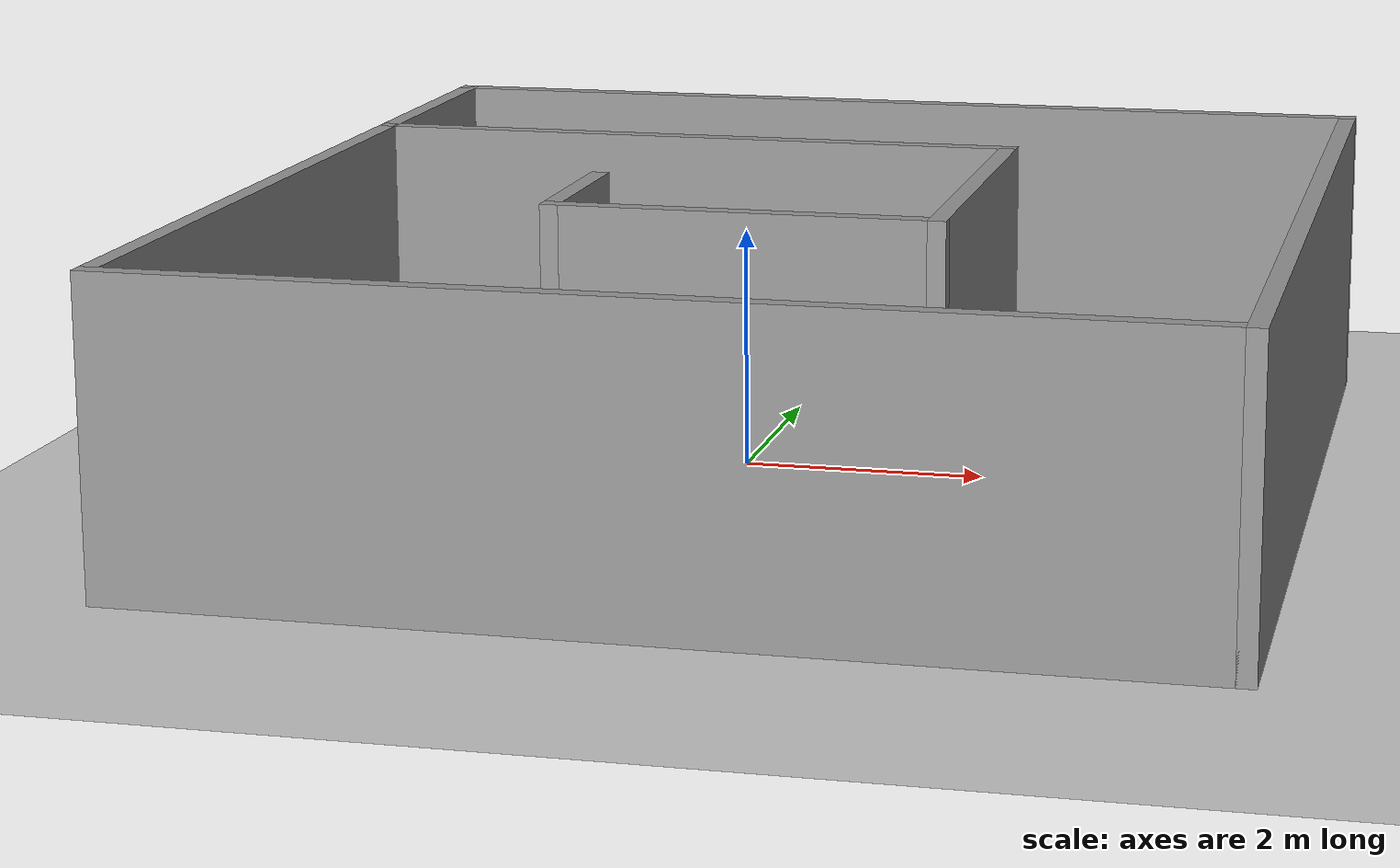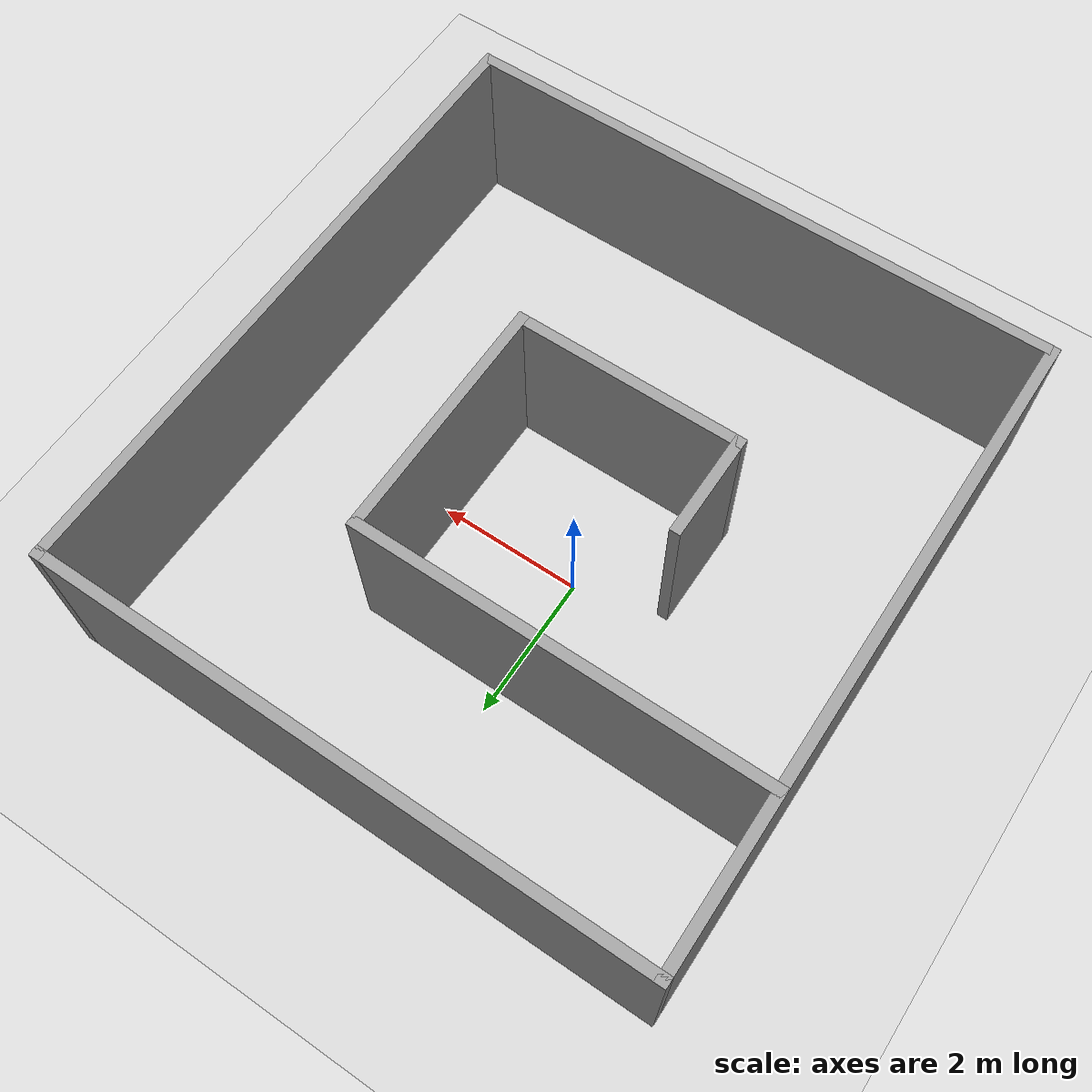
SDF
<sdf version="1.7">
 <world name="default">
  <light name="sun" type="directional">
   <pose>0 0 10 0 -0 0</pose>
   <diffuse>0.8 0.8 0.8 1</diffuse>
   <specular>0.2 0.2 0.2 1</specular>
   <attenuation>
    <range>1000</range>
    <constant>0.9</constant>
    <linear>0.01</linear>
    <quadratic>0.001</quadratic>
   </attenuation>
   <direction>-0.5 0.1 -0.9</direction>
   <spot><inner_angle>0</inner_angle><outer_angle>0</outer_angle><falloff>0</falloff></spot>
  </light>
  <model name="ground_plane">
   <static>1</static>
   <link name="link">
    <collision name="collision">
     <geometry><plane><normal>0 0 1</normal><size>100 100</size></plane></geometry>
     <surface><friction><ode><mu>100</mu><mu2>50</mu2></ode></friction></surface>
    </collision>
    <visual name="visual">
     <cast_shadows>0</cast_shadows>
     <geometry><plane><normal>0 0 1</normal><size>100 100</size></plane></geometry>
     <material>
      <script><uri>file://media/materials/scripts/gazebo.material</uri><name>Gazebo/Grey</name></script>
     </material>
    </visual>
   </link>
  </model>
  <gravity>0 0 -9.8</gravity>
  <magnetic_field>6e-06 2.3e-05 -4.2e-05</magnetic_field>
  <atmosphere type="adiabatic"/>
  <physics type="ode">
   <max_step_size>0.001</max_step_size>
   <real_time_factor>1</real_time_factor>
   <real_time_update_rate>1000</real_time_update_rate>
  </physics>
  <scene><ambient>0.4 0.4 0.4 1</ambient><background>0.7 0.7 0.7 1</background><shadows>1</shadows></scene>
  <spherical_coordinates>
   <surface_model>EARTH_WGS84</surface_model>
   <latitude_deg>0</latitude_deg>
   <longitude_deg>0</longitude_deg>
   <elevation>0</elevation>
   <heading_deg>0</heading_deg>
  </spherical_coordinates>
  <model name="demo2">
   <pose>0.490209 -0.489078 0 0 -0 0</pose>
   <link name="Wall_10">
    <collision name="Wall_10_Collision">
     <geometry><box><size>8.5 0.15 2.5</size></box></geometry>
     <pose>0 0 1.25 0 -0 0</pose>
    </collision>
    <visual name="Wall_10_Visual">
     <pose>0 0 1.25 0 -0 0</pose>
     <geometry><box><size>8.5 0.15 2.5</size></box></geometry>
     <material>
      <script><uri>file://media/materials/scripts/gazebo.material</uri><name>Gazebo/Grey</name></script>
      <ambient>1 1 1 1</ambient>
     </material>
     <meta><layer>0</layer></meta>
    </visual>
    <pose>-0 4.425 0 0 -0 3.14159</pose>
   </link>
   <link name="Wall_11">
    <collision name="Wall_11_Collision">
     <geometry><box><size>9 0.15 2.5</size></box></geometry>
     <pose>0 0 1.25 0 -0 0</pose>
    </collision>
    <visual name="Wall_11_Visual">
     <pose>0 0 1.25 0 -0 0</pose>
     <geometry><box><size>9 0.15 2.5</size></box></geometry>
     <material>
      <script><uri>file://media/materials/scripts/gazebo.material</uri><name>Gazebo/Grey</name></script>
      <ambient>1 1 1 1</ambient>
     </material>
     <meta><layer>0</layer></meta>
    </visual>
    <pose>-4.175 0 0 0 -0 -1.5708</pose>
   </link>
   <link name="Wall_15">
    <collision name="Wall_15_Collision">
     <geometry><box><size>5.75 0.15 2.5</size></box></geometry>
     <pose>0 0 1.25 0 -0 0</pose>
    </collision>
    <visual name="Wall_15_Visual">
     <pose>0 0 1.25 0 -0 0</pose>
     <geometry><box><size>5.75 0.15 2.5</size></box></geometry>
     <material>
      <script><uri>file://media/materials/scripts/gazebo.material</uri><name>Gazebo/Grey</name></script>
      <ambient>1 1 1 1</ambient>
     </material>
     <meta><layer>0</layer></meta>
    </visual>
    <pose>-1.36307 2.1204 0 0 -0 0</pose>
   </link>
   <link name="Wall_16">
    <collision name="Wall_16_Collision">
     <geometry><box><size>3.5 0.15 2.5</size></box></geometry>
     <pose>0 0 1.25 0 -0 0</pose>
    </collision>
    <visual name="Wall_16_Visual">
     <pose>0 0 1.25 0 -0 0</pose>
     <geometry><box><size>3.5 0.15 2.5</size></box></geometry>
     <material>
      <script><uri>file://media/materials/scripts/gazebo.material</uri><name>Gazebo/Grey</name></script>
      <ambient>1 1 1 1</ambient>
     </material>
     <meta><layer>0</layer></meta>
    </visual>
    <pose>1.43693 0.445396 0 0 -0 -1.5708</pose>
   </link>
   <link name="Wall_17">
    <collision name="Wall_17_Collision">
     <geometry><box><size>3.25 0.15 2.5</size></box></geometry>
     <pose>0 0 1.25 0 -0 0</pose>
    </collision>
    <visual name="Wall_17_Visual">
     <pose>0 0 1.25 0 -0 0</pose>
     <geometry><box><size>3.25 0.15 2.5</size></box></geometry>
     <material>
      <script><uri>file://media/materials/scripts/gazebo.material</uri><name>Gazebo/Grey</name></script>
      <ambient>1 1 1 1</ambient>
     </material>
     <meta><layer>0</layer></meta>
    </visual>
    <pose>-0.113072 -1.2296 0 0 -0 3.14159</pose>
   </link>
   <link name="Wall_18">
    <collision name="Wall_18_Collision">
     <geometry><box><size>1.5 0.15 2.5</size></box></geometry>
     <pose>0 0 1.25 0 -0 0</pose>
    </collision>
    <visual name="Wall_18_Visual">
     <pose>0 0 1.25 0 -0 0</pose>
     <geometry><box><size>1.5 0.15 2.5</size></box></geometry>
     <material>
      <script><uri>file://media/materials/scripts/gazebo.material</uri><name>Gazebo/Grey</name></script>
      <ambient>1 1 1 1</ambient>
     </material>
     <meta><layer>0</layer></meta>
    </visual>
    <pose>-1.66307 -0.554604 0 0 -0 1.5708</pose>
   </link>
   <link name="Wall_6">
    <collision name="Wall_6_Collision">
     <geometry><box><size>8.5 0.15 2.5</size></box></geometry>
     <pose>0 0 1.25 0 -0 0</pose>
    </collision>
    <visual name="Wall_6_Visual">
     <pose>0 0 1.25 0 -0 0</pose>
     <geometry><box><size>8.5 0.15 2.5</size></box></geometry>
     <material>
      <script><uri>file://media/materials/scripts/gazebo.material</uri><name>Gazebo/Grey</name></script>
      <ambient>1 1 1 1</ambient>
     </material>
     <meta><layer>0</layer></meta>
    </visual>
    <pose>-0 -4.425 0 0 -0 0</pose>
   </link>
   <link name="Wall_9">
    <collision name="Wall_9_Collision">
     <geometry><box><size>9 0.15 2.5</size></box></geometry>
     <pose>0 0 1.25 0 -0 0</pose>
    </collision>
    <visual name="Wall_9_Visual">
     <pose>0 0 1.25 0 -0 0</pose>
     <geometry><box><size>9 0.15 2.5</size></box></geometry>
     <material>
      <script><uri>file://media/materials/scripts/gazebo.material</uri><name>Gazebo/Grey</name></script>
      <ambient>1 1 1 1</ambient>
     </material>
     <meta><layer>0</layer></meta>
    </visual>
    <pose>4.175 0 0 0 -0 1.5708</pose>
   </link>
   <static>1</static>
  </model>
 </world>
</sdf>
